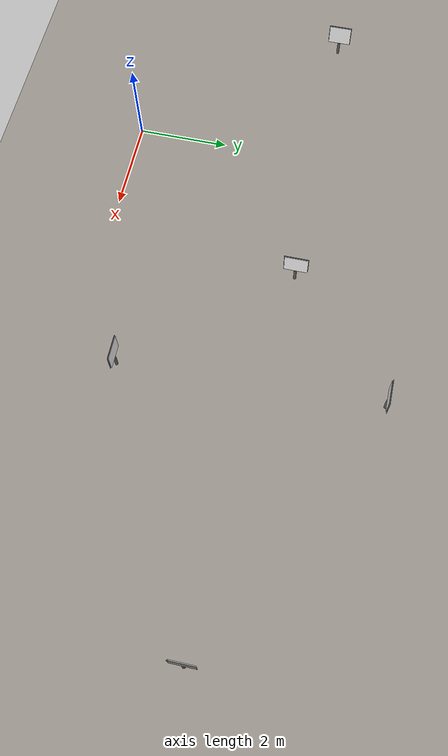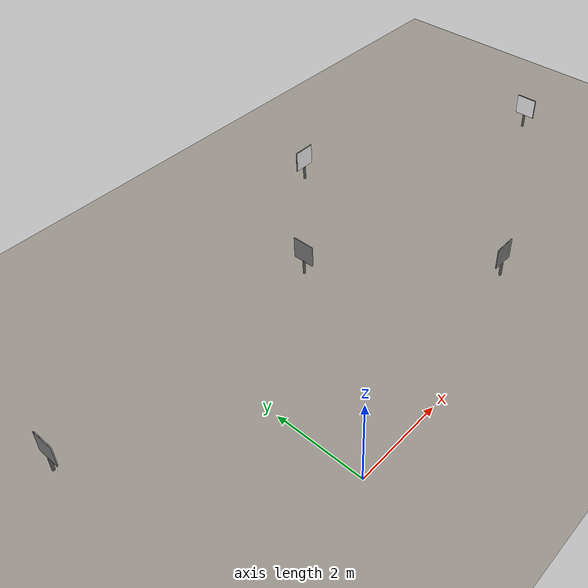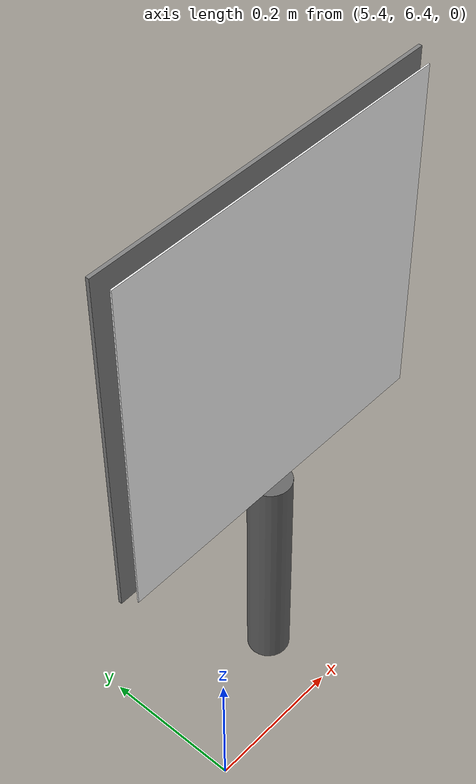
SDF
<?xml version="1.0" ?>
<sdf version="1.6">
  	<world name="tracking_piano_zero">
		<physics name="1ms" type="ignored">
			<max_step_size>0.001</max_step_size>
			<real_time_factor>1.0</real_time_factor>
		</physics>
		<plugin filename="gz-sim-physics-system" name="gz::sim::systems::Physics"/>
		<plugin filename="gz-sim-sensors-system" name="gz::sim::systems::Sensors">
			<render_engine>ogre2</render_engine>
		</plugin>
		<plugin filename="gz-sim-user-commands-system" name="gz::sim::systems::UserCommands"/>
		<plugin filename="gz-sim-scene-broadcaster-system" name="gz::sim::systems::SceneBroadcaster"/>
		<plugin filename="gz-sim-imu-system" name="gz::sim::systems::Imu"/>
		<plugin filename="xbot2_gz_clock" name="gz::sim::systems::GzClockPlugin"/>

		<light type="directional" name="sun">
			<cast_shadows>true</cast_shadows>
			<pose>0 0 10 0 0 0</pose>
			<diffuse>0.9 0.9 0.9 1</diffuse>
			<specular>0.2 0.2 0.2 1</specular>
			<attenuation><range>1000</range><constant>0.9</constant><linear>0.01</linear><quadratic>0.001</quadratic></attenuation>
			<direction>-0.5 0.1 -0.9</direction>
		</light>

		<scene>
			<ambient>0.6 0.6 0.6 1</ambient>
			<background>0.7 0.7 0.7 1</background>
		</scene>

		<!-- Magrone: empty ground plane -->
		<model name="magrone">
			<static>true</static>
			<link name="link">
				<collision name="collision">
					<geometry><plane><normal>0 0 1</normal><size>40 40</size></plane></geometry>
				</collision>
				<visual name="visual">
					<geometry><plane><normal>0 0 1</normal><size>40 40</size></plane></geometry>
					<material><ambient>0.6 0.58 0.55 1</ambient><diffuse>0.6 0.58 0.55 1</diffuse></material>
				</visual>
			</link>
		</model>

		<include><uri>model://aruco/marker_0</uri><pose>5.600 6.500 0 0 0 3.1416</pose></include>
		<include><uri>model://aruco/marker_1</uri><pose>-3.300 4.100 0 0 0 -1.5708</pose></include>
		<include><uri>model://aruco/marker_2</uri><pose>3.100 4.200 0 0 0 -1.5708</pose></include>
		<include><uri>model://aruco/marker_3</uri><pose>11.100 3.700 0 0 0 1.5708</pose></include>
		<include><uri>model://aruco/marker_4</uri><pose>5.800 1.000 0 0 0 0.0000</pose></include>

		<gui fullscreen="0">
			<camera name="user_camera">
				<pose>5 -20 14 0 0.5 1.5708</pose>
				<view_controller>orbit</view_controller>
			</camera>
		</gui>
  	</world>
</sdf>

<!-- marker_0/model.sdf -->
<sdf version="1.6">
  <model name="aruco_marker_0">
    <static>true</static>
    <link name="link">
      <!-- Support pole: top reaches the panel's lower edge (0.35 m), no overlap -->
      <visual name="pole">
        <pose>0 0 0.175 0 0 0</pose>
        <geometry><cylinder><radius>0.03</radius><length>0.35</length></cylinder></geometry>
        <material>
          <ambient>0.3 0.3 0.3 1</ambient>
          <diffuse>0.4 0.4 0.4 1</diffuse>
          <specular>0.1 0.1 0.1 1</specular>
        </material>
      </visual>
      <collision name="pole_col">
        <pose>0 0 0.175 0 0 0</pose>
        <geometry><cylinder><radius>0.03</radius><length>0.35</length></cylinder></geometry>
      </collision>
      <!-- Marker panel 0.50 m, center 0.6 m high; lower edge at 0.35 m -->
      <!-- Local +Y face carries the texture; world yaw aims it inward. -->
      <visual name="marker">
        <pose>0 0.011 0.6 1.5708 0 0</pose>
        <geometry><box><size>0.50 0.50 0.002</size></box></geometry>
        <material>
          <ambient>1.0 1.0 1.0 1</ambient>
          <diffuse>1.0 1.0 1.0 1</diffuse>
          <specular>0.0 0.0 0.0 1</specular>
          <pbr>
            <metal>
              <albedo_map>model://aruco/marker_0/materials/textures/marker_0.png</albedo_map>
              <metalness>0.0</metalness>
              <roughness>1.0</roughness>
            </metal>
          </pbr>
        </material>
      </visual>
      <collision name="marker_col">
        <pose>0 0 0.6 0 0 0</pose>
        <geometry><box><size>0.50 0.04 0.52</size></box></geometry>
      </collision>
      <!-- Opaque gray backing on the local -Y side: occludes the texture from
           behind so a camera facing the back cannot detect a mirrored (flipped) marker. -->
      <visual name="back_panel">
        <pose>0 -0.01 0.6 1.5708 0 0</pose>
        <geometry><box><size>0.52 0.52 0.005</size></box></geometry>
        <material>
          <ambient>0.5 0.5 0.5 1</ambient>
          <diffuse>0.5 0.5 0.5 1</diffuse>
          <specular>0.1 0.1 0.1 1</specular>
        </material>
      </visual>
    </link>
  </model>
</sdf>

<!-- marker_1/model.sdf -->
<sdf version="1.6">
  <model name="aruco_marker_1">
    <static>true</static>
    <link name="link">
      <!-- Support pole: top reaches the panel's lower edge (0.35 m), no overlap -->
      <visual name="pole">
        <pose>0 0 0.175 0 0 0</pose>
        <geometry><cylinder><radius>0.03</radius><length>0.35</length></cylinder></geometry>
        <material>
          <ambient>0.3 0.3 0.3 1</ambient>
          <diffuse>0.4 0.4 0.4 1</diffuse>
          <specular>0.1 0.1 0.1 1</specular>
        </material>
      </visual>
      <collision name="pole_col">
        <pose>0 0 0.175 0 0 0</pose>
        <geometry><cylinder><radius>0.03</radius><length>0.35</length></cylinder></geometry>
      </collision>
      <!-- Marker panel 0.50 m, center 0.6 m high; lower edge at 0.35 m -->
      <!-- Local +Y face carries the texture; world yaw aims it inward. -->
      <visual name="marker">
        <pose>0 0.011 0.6 1.5708 0 0</pose>
        <geometry><box><size>0.50 0.50 0.002</size></box></geometry>
        <material>
          <ambient>1.0 1.0 1.0 1</ambient>
          <diffuse>1.0 1.0 1.0 1</diffuse>
          <specular>0.0 0.0 0.0 1</specular>
          <pbr>
            <metal>
              <albedo_map>model://aruco/marker_1/materials/textures/marker_1.png</albedo_map>
              <metalness>0.0</metalness>
              <roughness>1.0</roughness>
            </metal>
          </pbr>
        </material>
      </visual>
      <collision name="marker_col">
        <pose>0 0 0.6 0 0 0</pose>
        <geometry><box><size>0.50 0.04 0.52</size></box></geometry>
      </collision>
      <!-- Opaque gray backing on the local -Y side: occludes the texture from
           behind so a camera facing the back cannot detect a mirrored (flipped) marker. -->
      <visual name="back_panel">
        <pose>0 -0.01 0.6 1.5708 0 0</pose>
        <geometry><box><size>0.52 0.52 0.005</size></box></geometry>
        <material>
          <ambient>0.5 0.5 0.5 1</ambient>
          <diffuse>0.5 0.5 0.5 1</diffuse>
          <specular>0.1 0.1 0.1 1</specular>
        </material>
      </visual>
    </link>
  </model>
</sdf>

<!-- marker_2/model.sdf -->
<sdf version="1.6">
  <model name="aruco_marker_2">
    <static>true</static>
    <link name="link">
      <!-- Support pole: top reaches the panel's lower edge (0.35 m), no overlap -->
      <visual name="pole">
        <pose>0 0 0.175 0 0 0</pose>
        <geometry><cylinder><radius>0.03</radius><length>0.35</length></cylinder></geometry>
        <material>
          <ambient>0.3 0.3 0.3 1</ambient>
          <diffuse>0.4 0.4 0.4 1</diffuse>
          <specular>0.1 0.1 0.1 1</specular>
        </material>
      </visual>
      <collision name="pole_col">
        <pose>0 0 0.175 0 0 0</pose>
        <geometry><cylinder><radius>0.03</radius><length>0.35</length></cylinder></geometry>
      </collision>
      <!-- Marker panel 0.50 m, center 0.6 m high; lower edge at 0.35 m -->
      <!-- Local +Y face carries the texture; world yaw aims it inward. -->
      <visual name="marker">
        <pose>0 0.011 0.6 1.5708 0 0</pose>
        <geometry><box><size>0.50 0.50 0.002</size></box></geometry>
        <material>
          <ambient>1.0 1.0 1.0 1</ambient>
          <diffuse>1.0 1.0 1.0 1</diffuse>
          <specular>0.0 0.0 0.0 1</specular>
          <pbr>
            <metal>
              <albedo_map>model://aruco/marker_2/materials/textures/marker_2.png</albedo_map>
              <metalness>0.0</metalness>
              <roughness>1.0</roughness>
            </metal>
          </pbr>
        </material>
      </visual>
      <collision name="marker_col">
        <pose>0 0 0.6 0 0 0</pose>
        <geometry><box><size>0.50 0.04 0.52</size></box></geometry>
      </collision>
      <!-- Opaque gray backing on the local -Y side: occludes the texture from
           behind so a camera facing the back cannot detect a mirrored (flipped) marker. -->
      <visual name="back_panel">
        <pose>0 -0.01 0.6 1.5708 0 0</pose>
        <geometry><box><size>0.52 0.52 0.005</size></box></geometry>
        <material>
          <ambient>0.5 0.5 0.5 1</ambient>
          <diffuse>0.5 0.5 0.5 1</diffuse>
          <specular>0.1 0.1 0.1 1</specular>
        </material>
      </visual>
    </link>
  </model>
</sdf>

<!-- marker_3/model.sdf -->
<sdf version="1.6">
  <model name="aruco_marker_3">
    <static>true</static>
    <link name="link">
      <!-- Support pole: top reaches the panel's lower edge (0.35 m), no overlap -->
      <visual name="pole">
        <pose>0 0 0.175 0 0 0</pose>
        <geometry><cylinder><radius>0.03</radius><length>0.35</length></cylinder></geometry>
        <material>
          <ambient>0.3 0.3 0.3 1</ambient>
          <diffuse>0.4 0.4 0.4 1</diffuse>
          <specular>0.1 0.1 0.1 1</specular>
        </material>
      </visual>
      <collision name="pole_col">
        <pose>0 0 0.175 0 0 0</pose>
        <geometry><cylinder><radius>0.03</radius><length>0.35</length></cylinder></geometry>
      </collision>
      <!-- Marker panel 0.50 m, center 0.6 m high; lower edge at 0.35 m -->
      <!-- Local +Y face carries the texture; world yaw aims it inward. -->
      <visual name="marker">
        <pose>0 0.011 0.6 1.5708 0 0</pose>
        <geometry><box><size>0.50 0.50 0.002</size></box></geometry>
        <material>
          <ambient>1.0 1.0 1.0 1</ambient>
          <diffuse>1.0 1.0 1.0 1</diffuse>
          <specular>0.0 0.0 0.0 1</specular>
          <pbr>
            <metal>
              <albedo_map>model://aruco/marker_3/materials/textures/marker_3.png</albedo_map>
              <metalness>0.0</metalness>
              <roughness>1.0</roughness>
            </metal>
          </pbr>
        </material>
      </visual>
      <collision name="marker_col">
        <pose>0 0 0.6 0 0 0</pose>
        <geometry><box><size>0.50 0.04 0.52</size></box></geometry>
      </collision>
      <!-- Opaque gray backing on the local -Y side: occludes the texture from
           behind so a camera facing the back cannot detect a mirrored (flipped) marker. -->
      <visual name="back_panel">
        <pose>0 -0.01 0.6 1.5708 0 0</pose>
        <geometry><box><size>0.52 0.52 0.005</size></box></geometry>
        <material>
          <ambient>0.5 0.5 0.5 1</ambient>
          <diffuse>0.5 0.5 0.5 1</diffuse>
          <specular>0.1 0.1 0.1 1</specular>
        </material>
      </visual>
    </link>
  </model>
</sdf>

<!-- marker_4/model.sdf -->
<sdf version="1.6">
  <model name="aruco_marker_4">
    <static>true</static>
    <link name="link">
      <!-- Support pole: top reaches the panel's lower edge (0.35 m), no overlap -->
      <visual name="pole">
        <pose>0 0 0.175 0 0 0</pose>
        <geometry><cylinder><radius>0.03</radius><length>0.35</length></cylinder></geometry>
        <material>
          <ambient>0.3 0.3 0.3 1</ambient>
          <diffuse>0.4 0.4 0.4 1</diffuse>
          <specular>0.1 0.1 0.1 1</specular>
        </material>
      </visual>
      <collision name="pole_col">
        <pose>0 0 0.175 0 0 0</pose>
        <geometry><cylinder><radius>0.03</radius><length>0.35</length></cylinder></geometry>
      </collision>
      <!-- Marker panel 0.50 m, center 0.6 m high; lower edge at 0.35 m -->
      <!-- Local +Y face carries the texture; world yaw aims it inward. -->
      <visual name="marker">
        <pose>0 0.011 0.6 1.5708 0 0</pose>
        <geometry><box><size>0.50 0.50 0.002</size></box></geometry>
        <material>
          <ambient>1.0 1.0 1.0 1</ambient>
          <diffuse>1.0 1.0 1.0 1</diffuse>
          <specular>0.0 0.0 0.0 1</specular>
          <pbr>
            <metal>
              <albedo_map>model://aruco/marker_4/materials/textures/marker_4.png</albedo_map>
              <metalness>0.0</metalness>
              <roughness>1.0</roughness>
            </metal>
          </pbr>
        </material>
      </visual>
      <collision name="marker_col">
        <pose>0 0 0.6 0 0 0</pose>
        <geometry><box><size>0.50 0.04 0.52</size></box></geometry>
      </collision>
      <!-- Opaque gray backing on the local -Y side: occludes the texture from
           behind so a camera facing the back cannot detect a mirrored (flipped) marker. -->
      <visual name="back_panel">
        <pose>0 -0.01 0.6 1.5708 0 0</pose>
        <geometry><box><size>0.52 0.52 0.005</size></box></geometry>
        <material>
          <ambient>0.5 0.5 0.5 1</ambient>
          <diffuse>0.5 0.5 0.5 1</diffuse>
          <specular>0.1 0.1 0.1 1</specular>
        </material>
      </visual>
    </link>
  </model>
</sdf>
